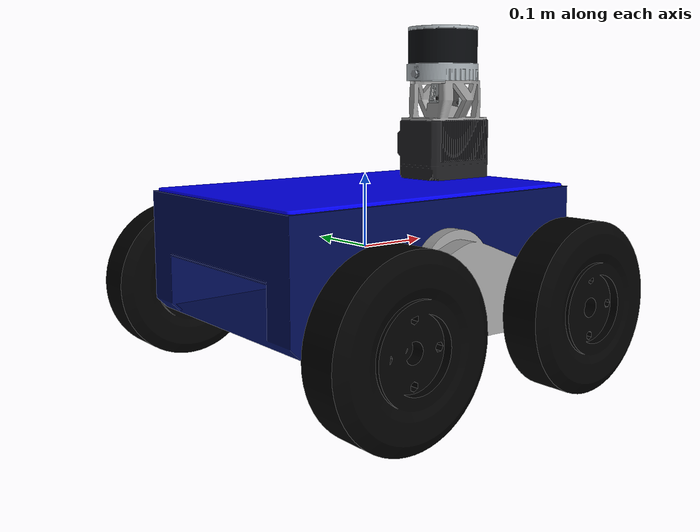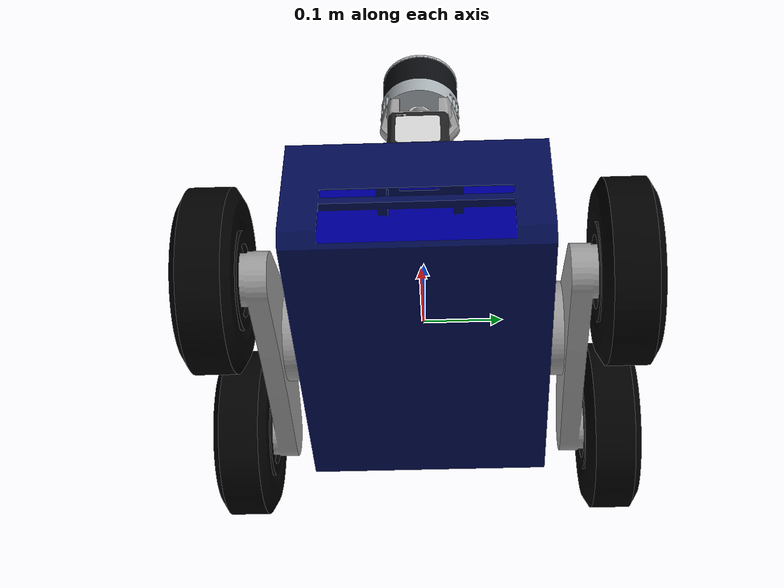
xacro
<?xml version="1.0"?>
<robot name="shoddy" xmlns:xacro="http://wiki.ros.org/xacro">

    <!-- Properties ======================================================== -->
    <xacro:property name="MESH" value="package://robocup_description/meshes/v2"/>

    <!-- Body box (without the top plate) -->
    <xacro:property name="BODY_SIZE_X" value="0.47"/>
    <xacro:property name="BODY_SIZE_Y" value="0.315"/>
    <xacro:property name="BODY_SIZE_Z" value="0.164"/>
    <xacro:property name="BODY_MASS" value="30.0"/>

    <!-- Suspension brackets (spojovnik), wheel axles relative to them -->
    <xacro:property name="SUSPENSION_Y" value="0.205"/>
    <xacro:property name="SUSPENSION_Z" value="-0.060"/>
    <xacro:property name="WHEEL_X" value="0.151"/>
    <xacro:property name="WHEEL_Y" value="${0.2385 - SUSPENSION_Y}"/>

    <!-- Wheels -->
    <xacro:property name="WHEEL_RADIUS" value="0.1098"/>
    <xacro:property name="WHEEL_WIDTH" value="0.068"/>
    <xacro:property name="WHEEL_MASS" value="0.5"/>

    <!-- Sensors (base_link frame) -->
    <xacro:property name="LIVOX_XYZ" value="0.150 0.0 0.1285"/>
    <xacro:property name="HOLDER_XYZ" value="0.1501 0.0 0.1705"/>
    <xacro:property name="CAMERA_XYZ" value="0.0262 0.0 0.0304"/>  <!-- in camera_holder_link -->
    <xacro:property name="CAMERA_PITCH" value="${radians(10.0)}"/>  <!-- tilted down -->
    <xacro:property name="HESAI_XYZ" value="0.146 0.0 0.2737"/>
    <!-- ======================================================== Properties -->

    <!-- Macros ============================================================ -->
    <xacro:macro name="no_inertia">
        <inertial>
            <mass value="0.0"/>
            <inertia ixx="0.0" ixy="0.0" ixz="0.0" iyy="0.0" iyz="0.0" izz="0.0"/>
        </inertial>
    </xacro:macro>

    <xacro:macro name="mesh_visual" params="file">
        <visual>
            <origin xyz="0.0 0.0 0.0" rpy="0.0 0.0 0.0"/>
            <geometry>
                <mesh filename="${MESH}/${file}.dae"/>
            </geometry>
        </visual>
    </xacro:macro>

    <xacro:macro name="fixed_joint" params="name parent child xyz rpy:='0.0 0.0 0.0'">
        <joint name="${name}" type="fixed">
            <origin xyz="${xyz}" rpy="${rpy}"/>
            <parent link="${parent}"/>
            <child link="${child}"/>
        </joint>
    </xacro:macro>

    <xacro:macro name="suspension" params="side reflect">
        <link name="suspension_${side}_link">
            <xacro:mesh_visual file="suspension_${side}"/>
            <xacro:no_inertia/>
        </link>
        <xacro:fixed_joint name="suspension_${side}_joint" parent="base_link"
                           child="suspension_${side}_link"
                           xyz="0.0 ${reflect * SUSPENSION_Y} ${SUSPENSION_Z}"/>

        <xacro:wheel side="${side}" part="front" reflect="${reflect}" x="${WHEEL_X}"/>
        <xacro:wheel side="${side}" part="rear" reflect="${reflect}" x="${-WHEEL_X}"/>
    </xacro:macro>

    <!-- The wheel mesh is the left wheel, the right ones are turned by pi about X -->
    <xacro:macro name="wheel" params="side part reflect x">
        <link name="wheel_${side}_${part}_link">
            <visual>
                <origin xyz="0.0 0.0 0.0" rpy="${(1 - reflect) / 2 * pi} 0.0 0.0"/>
                <geometry>
                    <mesh filename="${MESH}/wheel.dae"/>
                </geometry>
            </visual>

            <collision>
                <origin xyz="0.0 0.0 0.0" rpy="${pi/2} 0.0 0.0"/>
                <geometry>
                    <cylinder radius="${WHEEL_RADIUS}" length="${WHEEL_WIDTH}"/>
                </geometry>
            </collision>

            <inertial>
                <mass value="${WHEEL_MASS}"/>
                <inertia ixx="${WHEEL_MASS / 12 * (3 * WHEEL_RADIUS**2 + WHEEL_WIDTH**2)}" ixy="0.0" ixz="0.0"
                         iyy="${WHEEL_MASS / 2 * WHEEL_RADIUS**2}" iyz="0.0"
                         izz="${WHEEL_MASS / 12 * (3 * WHEEL_RADIUS**2 + WHEEL_WIDTH**2)}"/>
            </inertial>
        </link>

        <joint name="wheel_${side}_${part}_joint" type="continuous">
            <axis xyz="0.0 1.0 0.0"/>
            <origin xyz="${x} ${reflect * WHEEL_Y} 0.0" rpy="0.0 0.0 0.0"/>
            <parent link="suspension_${side}_link"/>
            <child link="wheel_${side}_${part}_link"/>
        </joint>
    </xacro:macro>
    <!-- ============================================================ Macros -->

    <!-- Body ============================================================== -->
    <link name="base_link">
        <xacro:mesh_visual file="main_body"/>

        <collision>
            <origin xyz="0.0 0.0 ${(BODY_SIZE_Z - 0.160) / 2}" rpy="0.0 0.0 0.0"/>
            <geometry>
                <box size="${BODY_SIZE_X} ${BODY_SIZE_Y} ${BODY_SIZE_Z}"/>
            </geometry>
        </collision>

        <inertial>
            <origin xyz="0.0 0.0 0.0" rpy="0.0 0.0 0.0"/>
            <mass value="${BODY_MASS}"/>
            <inertia ixx="${BODY_MASS / 12 * (BODY_SIZE_Y**2 + BODY_SIZE_Z**2)}" ixy="0.0" ixz="0.0"
                     iyy="${BODY_MASS / 12 * (BODY_SIZE_X**2 + BODY_SIZE_Z**2)}" iyz="0.0"
                     izz="${BODY_MASS / 12 * (BODY_SIZE_X**2 + BODY_SIZE_Y**2)}"/>
        </inertial>
    </link>

    <!-- IMU - no measured position yet, kept at the origin of base_link -->
    <link name="imu_frame">
        <xacro:no_inertia/>
    </link>
    <xacro:fixed_joint name="imu_joint" parent="base_link" child="imu_frame" xyz="0.0 0.0 0.0"/>
    <!-- ============================================================== Body -->

    <!-- Suspension and wheels ============================================= -->
    <xacro:suspension side="left" reflect="1"/>
    <xacro:suspension side="right" reflect="-1"/>
    <!-- ============================================= Suspension and wheels -->

    <!-- Sensors =========================================================== -->
    <!-- Livox Horizon (3D lidar with built-in IMU), frame in the centre of its housing -->
    <link name="livox_frame">
        <xacro:mesh_visual file="livox_horizon"/>
        <collision>
            <geometry>
                <box size="0.115 0.077 0.084"/>
            </geometry>
        </collision>
        <xacro:no_inertia/>
    </link>
    <xacro:fixed_joint name="livox_joint" parent="base_link" child="livox_frame" xyz="${LIVOX_XYZ}"/>

    <!-- Camera holder, frame at the centre of its base plate -->
    <link name="camera_holder_link">
        <xacro:mesh_visual file="camera_holder"/>
        <collision>
            <origin xyz="0.0 0.0 0.028" rpy="0.0 0.0 0.0"/>
            <geometry>
                <box size="0.110 0.104 0.056"/>
            </geometry>
        </collision>
        <xacro:no_inertia/>
    </link>
    <xacro:fixed_joint name="camera_holder_joint" parent="base_link" child="camera_holder_link"
                       xyz="${HOLDER_XYZ}"/>

    <!-- Basler a2A1920-160ucPRO, frame at the centre of the front face (lens mount),
         x along the optical axis -->
    <link name="camera_link">
        <xacro:mesh_visual file="camera"/>
        <xacro:no_inertia/>
    </link>
    <xacro:fixed_joint name="camera_joint" parent="camera_holder_link" child="camera_link"
                       xyz="${CAMERA_XYZ}" rpy="0.0 ${CAMERA_PITCH} 0.0"/>

    <!-- Optical frame (REP 103) - z forward, x right, y down -->
    <link name="camera_optical_frame">
        <xacro:no_inertia/>
    </link>
    <xacro:fixed_joint name="camera_optical_joint" parent="camera_link" child="camera_optical_frame"
                       xyz="0.0 0.0 0.0" rpy="${-pi/2} 0.0 ${-pi/2}"/>

    <!-- Hesai XT16, frame on the rotation axis at the middle of the optical window -->
    <link name="hesai_frame">
        <xacro:mesh_visual file="hesai_xt16"/>
        <collision>
            <origin xyz="0.0 0.0 -0.0097" rpy="0.0 0.0 0.0"/>
            <geometry>
                <cylinder radius="0.0515" length="0.076"/>
            </geometry>
        </collision>
        <xacro:no_inertia/>
    </link>
    <xacro:fixed_joint name="hesai_joint" parent="base_link" child="hesai_frame" xyz="${HESAI_XYZ}"/>
    <!-- =========================================================== Sensors -->
</robot>
